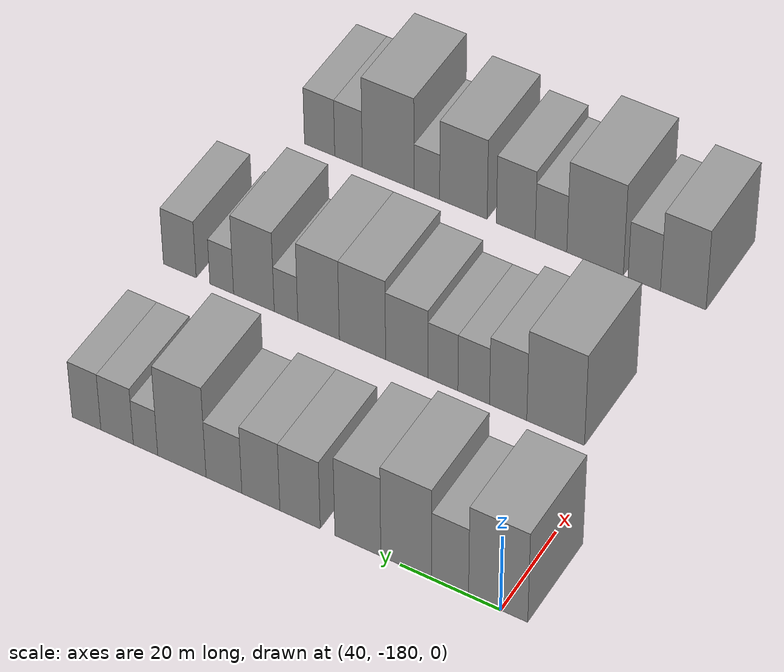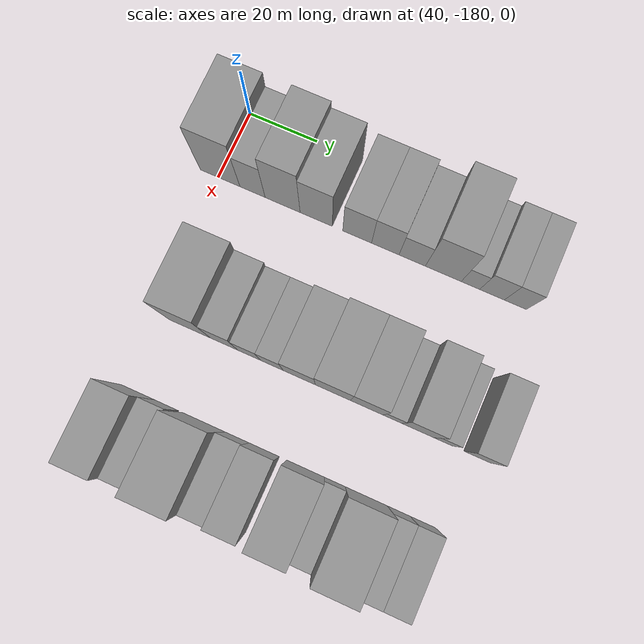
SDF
<sdf version="1.6">
 <world name="default">
  <model name="building_20">
   <static>1</static>
   <pose>50.0000 -179.4663 0 0.000000 0.000000 0.000000</pose>
   <link name="link">
    <pose>0 0 12.00 0 0 0</pose>
    <collision name="collision"><geometry><box><size>20.0000 11.7075 24.0000</size></box></geometry></collision>
    <visual name="visual">
     <cast_shadows>0</cast_shadows>
     <geometry><box><size>20.0000 11.7075 24.0000</size></box></geometry>
     <material>
      <script>
       <uri>model://grey_wall/materials/scripts</uri>
       <uri>model://grey_wall/materials/textures</uri>
       <name>vrc/grey_wall</name>
      </script>
     </material>
    </visual>
   </link>
  </model>
  <model name="building_21">
   <static>1</static>
   <pose>50.0000 -169.9237 0 0.000000 0.000000 0.000000</pose>
   <link name="link">
    <pose>0 0 9.00 0 0 0</pose>
    <collision name="collision"><geometry><box><size>20.0000 7.3776 18.0000</size></box></geometry></collision>
    <visual name="visual">
     <cast_shadows>0</cast_shadows>
     <geometry><box><size>20.0000 7.3776 18.0000</size></box></geometry>
     <material>
      <script>
       <uri>model://grey_wall/materials/scripts</uri>
       <uri>model://grey_wall/materials/textures</uri>
       <name>vrc/grey_wall</name>
      </script>
     </material>
    </visual>
   </link>
  </model>
  <model name="building_22">
   <static>1</static>
   <pose>50.0000 -161.1338 0 0.000000 0.000000 0.000000</pose>
   <link name="link">
    <pose>0 0 12.00 0 0 0</pose>
    <collision name="collision"><geometry><box><size>20.0000 10.2021 24.0000</size></box></geometry></collision>
    <visual name="visual">
     <cast_shadows>0</cast_shadows>
     <geometry><box><size>20.0000 10.2021 24.0000</size></box></geometry>
     <material>
      <script>
       <uri>model://grey_wall/materials/scripts</uri>
       <uri>model://grey_wall/materials/textures</uri>
       <name>vrc/grey_wall</name>
      </script>
     </material>
    </visual>
   </link>
  </model>
  <model name="building_23">
   <static>1</static>
   <pose>50.0000 -151.3745 0 0.000000 0.000000 0.000000</pose>
   <link name="link">
    <pose>0 0 10.50 0 0 0</pose>
    <collision name="collision"><geometry><box><size>20.0000 9.3167 21.0000</size></box></geometry></collision>
    <visual name="visual">
     <cast_shadows>0</cast_shadows>
     <geometry><box><size>20.0000 9.3167 21.0000</size></box></geometry>
     <material>
      <script>
       <uri>model://grey_wall/materials/scripts</uri>
       <uri>model://grey_wall/materials/textures</uri>
       <name>vrc/grey_wall</name>
      </script>
     </material>
    </visual>
   </link>
  </model>
  <model name="building_24">
   <static>1</static>
   <pose>50.0000 -139.5765 0 0.000000 0.000000 0.000000</pose>
   <link name="link">
    <pose>0 0 9.00 0 0 0</pose>
    <collision name="collision"><geometry><box><size>20.0000 8.2792 18.0000</size></box></geometry></collision>
    <visual name="visual">
     <cast_shadows>0</cast_shadows>
     <geometry><box><size>20.0000 8.2792 18.0000</size></box></geometry>
     <material>
      <script>
       <uri>model://grey_wall/materials/scripts</uri>
       <uri>model://grey_wall/materials/textures</uri>
       <name>vrc/grey_wall</name>
      </script>
     </material>
    </visual>
   </link>
  </model>
  <model name="building_25">
   <static>1</static>
   <pose>50.0000 -131.5119 0 0.000000 0.000000 0.000000</pose>
   <link name="link">
    <pose>0 0 9.00 0 0 0</pose>
    <collision name="collision"><geometry><box><size>20.0000 7.8499 18.0000</size></box></geometry></collision>
    <visual name="visual">
     <cast_shadows>0</cast_shadows>
     <geometry><box><size>20.0000 7.8499 18.0000</size></box></geometry>
     <material>
      <script>
       <uri>model://grey_wall/materials/scripts</uri>
       <uri>model://grey_wall/materials/textures</uri>
       <name>vrc/grey_wall</name>
      </script>
     </material>
    </visual>
   </link>
  </model>
  <model name="building_26">
   <static>1</static>
   <pose>50.0000 -123.8515 0 0.000000 0.000000 0.000000</pose>
   <link name="link">
    <pose>0 0 7.50 0 0 0</pose>
    <collision name="collision"><geometry><box><size>20.0000 7.4709 15.0000</size></box></geometry></collision>
    <visual name="visual">
     <cast_shadows>0</cast_shadows>
     <geometry><box><size>20.0000 7.4709 15.0000</size></box></geometry>
     <material>
      <script>
       <uri>model://grey_wall/materials/scripts</uri>
       <uri>model://grey_wall/materials/textures</uri>
       <name>vrc/grey_wall</name>
      </script>
     </material>
    </visual>
   </link>
  </model>
  <model name="building_27">
   <static>1</static>
   <pose>50.0000 -115.0399 0 0.000000 0.000000 0.000000</pose>
   <link name="link">
    <pose>0 0 12.00 0 0 0</pose>
    <collision name="collision"><geometry><box><size>20.0000 10.1523 24.0000</size></box></geometry></collision>
    <visual name="visual">
     <cast_shadows>0</cast_shadows>
     <geometry><box><size>20.0000 10.1523 24.0000</size></box></geometry>
     <material>
      <script>
       <uri>model://grey_wall/materials/scripts</uri>
       <uri>model://grey_wall/materials/textures</uri>
       <name>vrc/grey_wall</name>
      </script>
     </material>
    </visual>
   </link>
  </model>
  <model name="building_28">
   <static>1</static>
   <pose>50.0000 -107.3842 0 0.000000 0.000000 0.000000</pose>
   <link name="link">
    <pose>0 0 6.00 0 0 0</pose>
    <collision name="collision"><geometry><box><size>20.0000 5.1590 12.0000</size></box></geometry></collision>
    <visual name="visual">
     <cast_shadows>0</cast_shadows>
     <geometry><box><size>20.0000 5.1590 12.0000</size></box></geometry>
     <material>
      <script>
       <uri>model://grey_wall/materials/scripts</uri>
       <uri>model://grey_wall/materials/textures</uri>
       <name>vrc/grey_wall</name>
      </script>
     </material>
    </visual>
   </link>
  </model>
  <model name="building_29">
   <static>1</static>
   <pose>50.0000 -101.3561 0 0.000000 0.000000 0.000000</pose>
   <link name="link">
    <pose>0 0 7.50 0 0 0</pose>
    <collision name="collision"><geometry><box><size>20.0000 6.8971 15.0000</size></box></geometry></collision>
    <visual name="visual">
     <cast_shadows>0</cast_shadows>
     <geometry><box><size>20.0000 6.8971 15.0000</size></box></geometry>
     <material>
      <script>
       <uri>model://grey_wall/materials/scripts</uri>
       <uri>model://grey_wall/materials/textures</uri>
       <name>vrc/grey_wall</name>
      </script>
     </material>
    </visual>
   </link>
  </model>
  <model name="building_30">
   <static>1</static>
   <pose>50.0000 -94.8345 0 0.000000 0.000000 0.000000</pose>
   <link name="link">
    <pose>0 0 7.50 0 0 0</pose>
    <collision name="collision"><geometry><box><size>20.0000 6.1461 15.0000</size></box></geometry></collision>
    <visual name="visual">
     <cast_shadows>0</cast_shadows>
     <geometry><box><size>20.0000 6.1461 15.0000</size></box></geometry>
     <material>
      <script>
       <uri>model://grey_wall/materials/scripts</uri>
       <uri>model://grey_wall/materials/textures</uri>
       <name>vrc/grey_wall</name>
      </script>
     </material>
    </visual>
   </link>
  </model>
  <model name="building_111">
   <static>1</static>
   <pose>90.0000 -168.9649 0 0.000000 0.000000 0.000000</pose>
   <link name="link">
    <pose>0 0 12.00 0 0 0</pose>
    <collision name="collision"><geometry><box><size>20.0000 11.7870 24.0000</size></box></geometry></collision>
    <visual name="visual">
     <cast_shadows>0</cast_shadows>
     <geometry><box><size>20.0000 11.7870 24.0000</size></box></geometry>
     <material>
      <script>
       <uri>model://grey_wall/materials/scripts</uri>
       <uri>model://grey_wall/materials/textures</uri>
       <name>vrc/grey_wall</name>
      </script>
     </material>
    </visual>
   </link>
  </model>
  <model name="building_112">
   <static>1</static>
   <pose>90.0000 -159.2327 0 0.000000 0.000000 0.000000</pose>
   <link name="link">
    <pose>0 0 9.00 0 0 0</pose>
    <collision name="collision"><geometry><box><size>20.0000 7.6773 18.0000</size></box></geometry></collision>
    <visual name="visual">
     <cast_shadows>0</cast_shadows>
     <geometry><box><size>20.0000 7.6773 18.0000</size></box></geometry>
     <material>
      <script>
       <uri>model://grey_wall/materials/scripts</uri>
       <uri>model://grey_wall/materials/textures</uri>
       <name>vrc/grey_wall</name>
      </script>
     </material>
    </visual>
   </link>
  </model>
  <model name="building_113">
   <static>1</static>
   <pose>90.0000 -152.1199 0 0.000000 0.000000 0.000000</pose>
   <link name="link">
    <pose>0 0 7.50 0 0 0</pose>
    <collision name="collision"><geometry><box><size>20.0000 6.5484 15.0000</size></box></geometry></collision>
    <visual name="visual">
     <cast_shadows>0</cast_shadows>
     <geometry><box><size>20.0000 6.5484 15.0000</size></box></geometry>
     <material>
      <script>
       <uri>model://grey_wall/materials/scripts</uri>
       <uri>model://grey_wall/materials/textures</uri>
       <name>vrc/grey_wall</name>
      </script>
     </material>
    </visual>
   </link>
  </model>
  <model name="building_114">
   <static>1</static>
   <pose>90.0000 -145.7320 0 0.000000 0.000000 0.000000</pose>
   <link name="link">
    <pose>0 0 7.50 0 0 0</pose>
    <collision name="collision"><geometry><box><size>20.0000 6.2275 15.0000</size></box></geometry></collision>
    <visual name="visual">
     <cast_shadows>0</cast_shadows>
     <geometry><box><size>20.0000 6.2275 15.0000</size></box></geometry>
     <material>
      <script>
       <uri>model://grey_wall/materials/scripts</uri>
       <uri>model://grey_wall/materials/textures</uri>
       <name>vrc/grey_wall</name>
      </script>
     </material>
    </visual>
   </link>
  </model>
  <model name="building_115">
   <static>1</static>
   <pose>90.0000 -138.1670 0 0.000000 0.000000 0.000000</pose>
   <link name="link">
    <pose>0 0 9.00 0 0 0</pose>
    <collision name="collision"><geometry><box><size>20.0000 8.9025 18.0000</size></box></geometry></collision>
    <visual name="visual">
     <cast_shadows>0</cast_shadows>
     <geometry><box><size>20.0000 8.9025 18.0000</size></box></geometry>
     <material>
      <script>
       <uri>model://grey_wall/materials/scripts</uri>
       <uri>model://grey_wall/materials/textures</uri>
       <name>vrc/grey_wall</name>
      </script>
     </material>
    </visual>
   </link>
  </model>
  <model name="building_116">
   <static>1</static>
   <pose>90.0000 -128.8193 0 0.000000 0.000000 0.000000</pose>
   <link name="link">
    <pose>0 0 10.50 0 0 0</pose>
    <collision name="collision"><geometry><box><size>20.0000 9.7930 21.0000</size></box></geometry></collision>
    <visual name="visual">
     <cast_shadows>0</cast_shadows>
     <geometry><box><size>20.0000 9.7930 21.0000</size></box></geometry>
     <material>
      <script>
       <uri>model://grey_wall/materials/scripts</uri>
       <uri>model://grey_wall/materials/textures</uri>
       <name>vrc/grey_wall</name>
      </script>
     </material>
    </visual>
   </link>
  </model>
  <model name="building_117">
   <static>1</static>
   <pose>90.0000 -119.4898 0 0.000000 0.000000 0.000000</pose>
   <link name="link">
    <pose>0 0 10.50 0 0 0</pose>
    <collision name="collision"><geometry><box><size>20.0000 8.8660 21.0000</size></box></geometry></collision>
    <visual name="visual">
     <cast_shadows>0</cast_shadows>
     <geometry><box><size>20.0000 8.8660 21.0000</size></box></geometry>
     <material>
      <script>
       <uri>model://grey_wall/materials/scripts</uri>
       <uri>model://grey_wall/materials/textures</uri>
       <name>vrc/grey_wall</name>
      </script>
     </material>
    </visual>
   </link>
  </model>
  <model name="building_118">
   <static>1</static>
   <pose>90.0000 -112.5178 0 0.000000 0.000000 0.000000</pose>
   <link name="link">
    <pose>0 0 6.00 0 0 0</pose>
    <collision name="collision"><geometry><box><size>20.0000 5.0781 12.0000</size></box></geometry></collision>
    <visual name="visual">
     <cast_shadows>0</cast_shadows>
     <geometry><box><size>20.0000 5.0781 12.0000</size></box></geometry>
     <material>
      <script>
       <uri>model://grey_wall/materials/scripts</uri>
       <uri>model://grey_wall/materials/textures</uri>
       <name>vrc/grey_wall</name>
      </script>
     </material>
    </visual>
   </link>
  </model>
  <model name="building_119">
   <static>1</static>
   <pose>90.0000 -105.5789 0 0.000000 0.000000 0.000000</pose>
   <link name="link">
    <pose>0 0 10.50 0 0 0</pose>
    <collision name="collision"><geometry><box><size>20.0000 8.7997 21.0000</size></box></geometry></collision>
    <visual name="visual">
     <cast_shadows>0</cast_shadows>
     <geometry><box><size>20.0000 8.7997 21.0000</size></box></geometry>
     <material>
      <script>
       <uri>model://grey_wall/materials/scripts</uri>
       <uri>model://grey_wall/materials/textures</uri>
       <name>vrc/grey_wall</name>
      </script>
     </material>
    </visual>
   </link>
  </model>
  <model name="building_120">
   <static>1</static>
   <pose>90.0000 -98.5974 0 0.000000 0.000000 0.000000</pose>
   <link name="link">
    <pose>0 0 6.00 0 0 0</pose>
    <collision name="collision"><geometry><box><size>20.0000 5.1633 12.0000</size></box></geometry></collision>
    <visual name="visual">
     <cast_shadows>0</cast_shadows>
     <geometry><box><size>20.0000 5.1633 12.0000</size></box></geometry>
     <material>
      <script>
       <uri>model://grey_wall/materials/scripts</uri>
       <uri>model://grey_wall/materials/textures</uri>
       <name>vrc/grey_wall</name>
      </script>
     </material>
    </visual>
   </link>
  </model>
  <model name="building_121">
   <static>1</static>
   <pose>90.0000 -89.4304 0 0.000000 0.000000 0.000000</pose>
   <link name="link">
    <pose>0 0 7.50 0 0 0</pose>
    <collision name="collision"><geometry><box><size>20.0000 7.1706 15.0000</size></box></geometry></collision>
    <visual name="visual">
     <cast_shadows>0</cast_shadows>
     <geometry><box><size>20.0000 7.1706 15.0000</size></box></geometry>
     <material>
      <script>
       <uri>model://grey_wall/materials/scripts</uri>
       <uri>model://grey_wall/materials/textures</uri>
       <name>vrc/grey_wall</name>
      </script>
     </material>
    </visual>
   </link>
  </model>
  <model name="building_188">
   <static>1</static>
   <pose>130.0000 -174.0091 0 0.000000 0.000000 0.000000</pose>
   <link name="link">
    <pose>0 0 10.50 0 0 0</pose>
    <collision name="collision"><geometry><box><size>20.0000 9.4610 21.0000</size></box></geometry></collision>
    <visual name="visual">
     <cast_shadows>0</cast_shadows>
     <geometry><box><size>20.0000 9.4610 21.0000</size></box></geometry>
     <material>
      <script>
       <uri>model://grey_wall/materials/scripts</uri>
       <uri>model://grey_wall/materials/textures</uri>
       <name>vrc/grey_wall</name>
      </script>
     </material>
    </visual>
   </link>
  </model>
  <model name="building_189">
   <static>1</static>
   <pose>130.0000 -165.8909 0 0.000000 0.000000 0.000000</pose>
   <link name="link">
    <pose>0 0 7.50 0 0 0</pose>
    <collision name="collision"><geometry><box><size>20.0000 6.7754 15.0000</size></box></geometry></collision>
    <visual name="visual">
     <cast_shadows>0</cast_shadows>
     <geometry><box><size>20.0000 6.7754 15.0000</size></box></geometry>
     <material>
      <script>
       <uri>model://grey_wall/materials/scripts</uri>
       <uri>model://grey_wall/materials/textures</uri>
       <name>vrc/grey_wall</name>
      </script>
     </material>
    </visual>
   </link>
  </model>
  <model name="building_190">
   <static>1</static>
   <pose>130.0000 -155.5298 0 0.000000 0.000000 0.000000</pose>
   <link name="link">
    <pose>0 0 12.00 0 0 0</pose>
    <collision name="collision"><geometry><box><size>20.0000 11.9469 24.0000</size></box></geometry></collision>
    <visual name="visual">
     <cast_shadows>0</cast_shadows>
     <geometry><box><size>20.0000 11.9469 24.0000</size></box></geometry>
     <material>
      <script>
       <uri>model://grey_wall/materials/scripts</uri>
       <uri>model://grey_wall/materials/textures</uri>
       <name>vrc/grey_wall</name>
      </script>
     </material>
    </visual>
   </link>
  </model>
  <model name="building_191">
   <static>1</static>
   <pose>130.0000 -146.1882 0 0.000000 0.000000 0.000000</pose>
   <link name="link">
    <pose>0 0 7.50 0 0 0</pose>
    <collision name="collision"><geometry><box><size>20.0000 6.7363 15.0000</size></box></geometry></collision>
    <visual name="visual">
     <cast_shadows>0</cast_shadows>
     <geometry><box><size>20.0000 6.7363 15.0000</size></box></geometry>
     <material>
      <script>
       <uri>model://grey_wall/materials/scripts</uri>
       <uri>model://grey_wall/materials/textures</uri>
       <name>vrc/grey_wall</name>
      </script>
     </material>
    </visual>
   </link>
  </model>
  <model name="building_192">
   <static>1</static>
   <pose>130.0000 -138.6651 0 0.000000 0.000000 0.000000</pose>
   <link name="link">
    <pose>0 0 9.00 0 0 0</pose>
    <collision name="collision"><geometry><box><size>20.0000 8.3097 18.0000</size></box></geometry></collision>
    <visual name="visual">
     <cast_shadows>0</cast_shadows>
     <geometry><box><size>20.0000 8.3097 18.0000</size></box></geometry>
     <material>
      <script>
       <uri>model://grey_wall/materials/scripts</uri>
       <uri>model://grey_wall/materials/textures</uri>
       <name>vrc/grey_wall</name>
      </script>
     </material>
    </visual>
   </link>
  </model>
  <model name="building_193">
   <static>1</static>
   <pose>130.0000 -127.3720 0 0.000000 0.000000 0.000000</pose>
   <link name="link">
    <pose>0 0 10.50 0 0 0</pose>
    <collision name="collision"><geometry><box><size>20.0000 10.2764 21.0000</size></box></geometry></collision>
    <visual name="visual">
     <cast_shadows>0</cast_shadows>
     <geometry><box><size>20.0000 10.2764 21.0000</size></box></geometry>
     <material>
      <script>
       <uri>model://grey_wall/materials/scripts</uri>
       <uri>model://grey_wall/materials/textures</uri>
       <name>vrc/grey_wall</name>
      </script>
     </material>
    </visual>
   </link>
  </model>
  <model name="building_194">
   <static>1</static>
   <pose>130.0000 -119.4280 0 0.000000 0.000000 0.000000</pose>
   <link name="link">
    <pose>0 0 6.00 0 0 0</pose>
    <collision name="collision"><geometry><box><size>20.0000 5.6116 12.0000</size></box></geometry></collision>
    <visual name="visual">
     <cast_shadows>0</cast_shadows>
     <geometry><box><size>20.0000 5.6116 12.0000</size></box></geometry>
     <material>
      <script>
       <uri>model://grey_wall/materials/scripts</uri>
       <uri>model://grey_wall/materials/textures</uri>
       <name>vrc/grey_wall</name>
      </script>
     </material>
    </visual>
   </link>
  </model>
  <model name="building_195">
   <static>1</static>
   <pose>130.0000 -110.9545 0 0.000000 0.000000 0.000000</pose>
   <link name="link">
    <pose>0 0 12.00 0 0 0</pose>
    <collision name="collision"><geometry><box><size>20.0000 11.3355 24.0000</size></box></geometry></collision>
    <visual name="visual">
     <cast_shadows>0</cast_shadows>
     <geometry><box><size>20.0000 11.3355 24.0000</size></box></geometry>
     <material>
      <script>
       <uri>model://grey_wall/materials/scripts</uri>
       <uri>model://grey_wall/materials/textures</uri>
       <name>vrc/grey_wall</name>
      </script>
     </material>
    </visual>
   </link>
  </model>
  <model name="building_196">
   <static>1</static>
   <pose>130.0000 -102.2326 0 0.000000 0.000000 0.000000</pose>
   <link name="link">
    <pose>0 0 7.50 0 0 0</pose>
    <collision name="collision"><geometry><box><size>20.0000 6.1082 15.0000</size></box></geometry></collision>
    <visual name="visual">
     <cast_shadows>0</cast_shadows>
     <geometry><box><size>20.0000 6.1082 15.0000</size></box></geometry>
     <material>
      <script>
       <uri>model://grey_wall/materials/scripts</uri>
       <uri>model://grey_wall/materials/textures</uri>
       <name>vrc/grey_wall</name>
      </script>
     </material>
    </visual>
   </link>
  </model>
  <model name="building_197">
   <static>1</static>
   <pose>130.0000 -95.8167 0 0.000000 0.000000 0.000000</pose>
   <link name="link">
    <pose>0 0 7.50 0 0 0</pose>
    <collision name="collision"><geometry><box><size>20.0000 6.7236 15.0000</size></box></geometry></collision>
    <visual name="visual">
     <cast_shadows>0</cast_shadows>
     <geometry><box><size>20.0000 6.7236 15.0000</size></box></geometry>
     <material>
      <script>
       <uri>model://grey_wall/materials/scripts</uri>
       <uri>model://grey_wall/materials/textures</uri>
       <name>vrc/grey_wall</name>
      </script>
     </material>
    </visual>
   </link>
  </model>
 </world>
</sdf>
